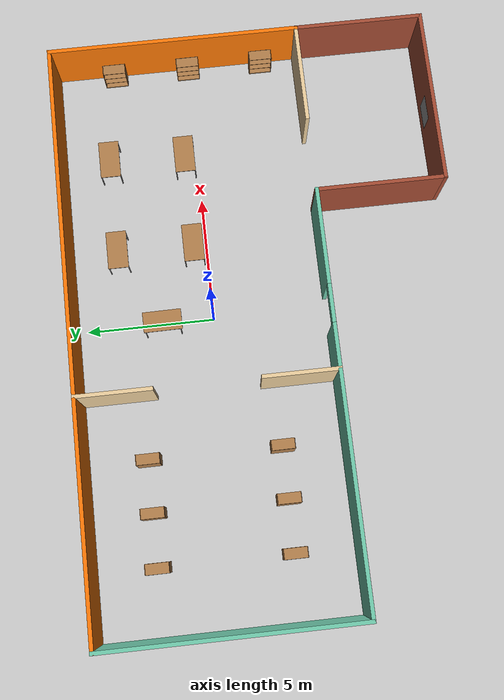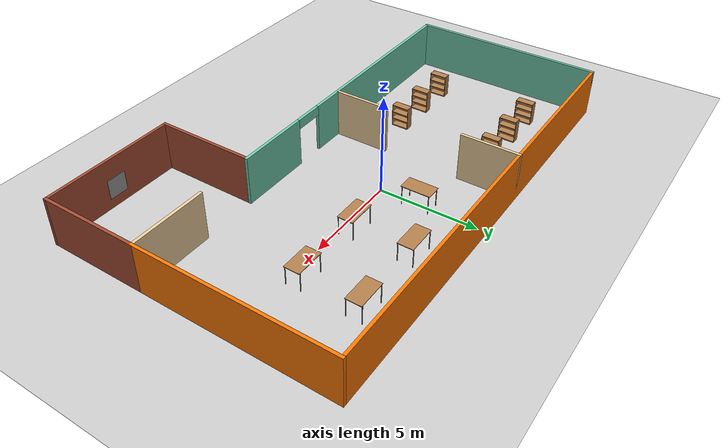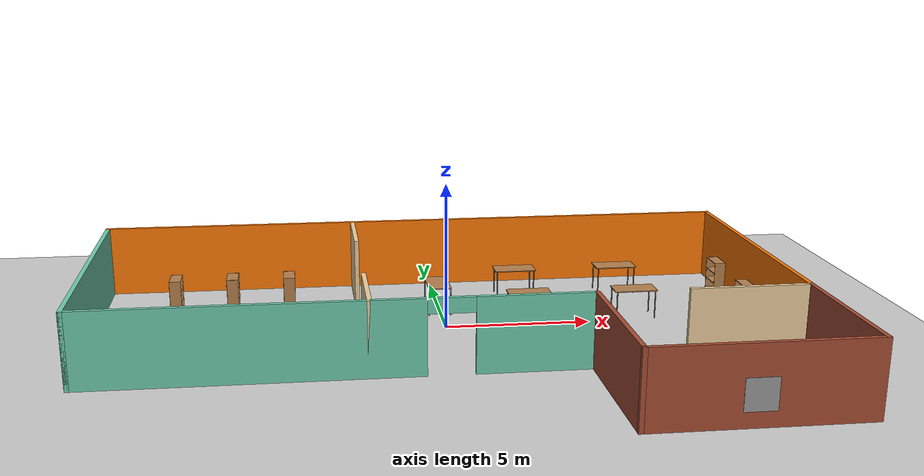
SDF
<sdf version="1.6">
 <world name="default">
  <light name="sun" type="directional">
   <pose>0 0 10 0 -0 0</pose>
   <diffuse>0.8 0.8 0.8 1</diffuse>
   <specular>0.2 0.2 0.2 1</specular>
   <attenuation>
    <range>1000</range>
    <constant>0.9</constant>
    <linear>0.01</linear>
    <quadratic>0.001</quadratic>
   </attenuation>
   <direction>-0.5 0.1 -0.9</direction>
  </light>
  <model name="ground_plane">
   <static>1</static>
   <link name="link">
    <collision name="collision">
     <geometry><plane><normal>0 0 1</normal><size>100 100</size></plane></geometry>
     <surface><friction><ode><mu>100</mu><mu2>50</mu2></ode></friction></surface>
    </collision>
    <visual name="visual">
     <cast_shadows>0</cast_shadows>
     <geometry><plane><normal>0 0 1</normal><size>100 100</size></plane></geometry>
     <material>
      <script><uri>file://media/materials/scripts/gazebo.material</uri><name>Gazebo/Grey</name></script>
     </material>
    </visual>
   </link>
  </model>
  <gravity>0 0 -9.8</gravity>
  <magnetic_field>6e-06 2.3e-05 -4.2e-05</magnetic_field>
  <atmosphere type="adiabatic"/>
  <physics name="default_physics" default="0" type="ode">
   <max_step_size>0.001</max_step_size>
   <real_time_factor>1</real_time_factor>
   <real_time_update_rate>1000</real_time_update_rate>
  </physics>
  <scene><ambient>0.4 0.4 0.4 1</ambient><background>0.7 0.7 0.7 1</background><shadows>1</shadows></scene>
  <spherical_coordinates>
   <surface_model>EARTH_WGS84</surface_model>
   <latitude_deg>0</latitude_deg>
   <longitude_deg>0</longitude_deg>
   <elevation>0</elevation>
   <heading_deg>0</heading_deg>
  </spherical_coordinates>
  <model name="model">
   <pose>-0.4599 -2.03302 0 0 -0 0</pose>
   <link name="Wall_0">
    <collision name="Wall_0_Collision">
     <geometry><box><size>10 0.15 2.5</size></box></geometry>
     <pose>0 0 1.25 0 -0 0</pose>
    </collision>
    <visual name="Wall_0_Visual">
     <pose>0 0 1.25 0 -0 0</pose>
     <geometry><box><size>10 0.15 2.5</size></box></geometry>
     <material>
      <script><uri>file://media/materials/scripts/gazebo.material</uri><name>Gazebo/Grey</name></script>
      <ambient>0.435294 0.796078 0.67451 1</ambient>
     </material>
     <meta><layer>0</layer></meta>
    </visual>
    <pose>-11.425 2.5 0 0 0 -1.5708</pose>
   </link>
   <link name="Wall_12">
    <pose>-3.425 -2.425 0 0 -0 0</pose>
    <visual name="Wall_12_Visual_0">
     <pose>-2.66312 0 1.25 0 -0 0</pose>
     <geometry><box><size>10.8238 0.15 2.5</size></box></geometry>
     <material>
      <script><uri>file://media/materials/scripts/gazebo.material</uri><name>Gazebo/Grey</name></script>
      <ambient>0.435294 0.796078 0.67451 1</ambient>
     </material>
     <meta><layer>0</layer></meta>
    </visual>
    <collision name="Wall_12_Collision_0">
     <geometry><box><size>10.8238 0.15 2.5</size></box></geometry>
     <pose>-2.66312 0 1.25 0 -0 0</pose>
    </collision>
    <visual name="Wall_12_Visual_1">
     <pose>6.16188 0 1.25 0 -0 0</pose>
     <geometry><box><size>3.82625 0.15 2.5</size></box></geometry>
     <material>
      <script><uri>file://media/materials/scripts/gazebo.material</uri><name>Gazebo/Grey</name></script>
      <ambient>0.435294 0.796078 0.67451 1</ambient>
     </material>
     <meta><layer>0</layer></meta>
    </visual>
    <collision name="Wall_12_Collision_1">
     <geometry><box><size>3.82625 0.15 2.5</size></box></geometry>
     <pose>6.16188 0 1.25 0 -0 0</pose>
    </collision>
    <visual name="Wall_12_Visual_2">
     <pose>3.49875 0 2.25 0 -0 0</pose>
     <geometry><box><size>1.5 0.15 0.5</size></box></geometry>
     <material>
      <script><uri>file://media/materials/scripts/gazebo.material</uri><name>Gazebo/Grey</name></script>
      <ambient>0.435294 0.796078 0.67451 1</ambient>
     </material>
     <meta><layer>0</layer></meta>
    </visual>
    <collision name="Wall_12_Collision_2">
     <geometry><box><size>1.5 0.15 0.5</size></box></geometry>
     <pose>3.49875 0 2.25 0 -0 0</pose>
    </collision>
   </link>
   <link name="Wall_18">
    <collision name="Wall_18_Collision">
     <geometry><box><size>5.15 0.15 2.5</size></box></geometry>
     <pose>0 0 1.25 0 -0 0</pose>
    </collision>
    <visual name="Wall_18_Visual">
     <pose>0 0 1.25 0 -0 0</pose>
     <geometry><box><size>5.15 0.15 2.5</size></box></geometry>
     <material>
      <script><uri>file://media/materials/scripts/gazebo.material</uri><name>Gazebo/Bricks</name></script>
      <ambient>1 1 1 1</ambient>
     </material>
     <meta><layer>0</layer></meta>
    </visual>
    <pose>4.575 -4.925 0 0 -0 1.5708</pose>
   </link>
   <link name="Wall_2">
    <collision name="Wall_2_Collision">
     <geometry><box><size>23 0.15 2.5</size></box></geometry>
     <pose>0 0 1.25 0 -0 0</pose>
    </collision>
    <visual name="Wall_2_Visual">
     <pose>0 0 1.25 0 -0 0</pose>
     <geometry><box><size>23 0.15 2.5</size></box></geometry>
     <material>
      <script><uri>file://media/materials/scripts/gazebo.material</uri><name>Gazebo/Grey</name></script>
      <ambient>0.996078 0.47451 0.0196078 1</ambient>
     </material>
     <meta><layer>0</layer></meta>
    </visual>
    <pose>0 7.425 0 0 -0 0</pose>
   </link>
   <link name="Wall_20">
    <collision name="Wall_20_Collision">
     <geometry><box><size>4 0.15 2.5</size></box></geometry>
     <pose>0 0 1.25 0 -0 0</pose>
    </collision>
    <visual name="Wall_20_Visual">
     <pose>0 0 1.25 0 -0 0</pose>
     <geometry><box><size>4 0.15 2.5</size></box></geometry>
     <material>
      <script><uri>file://media/materials/scripts/gazebo.material</uri><name>Gazebo/Grey</name></script>
      <ambient>0.921569 0.807843 0.615686 1</ambient>
     </material>
     <meta><layer>0</layer></meta>
    </visual>
    <pose>9.5 -2.425 0 0 -0 3.14159</pose>
   </link>
   <link name="Wall_22">
    <collision name="Wall_22_Collision">
     <geometry><box><size>3 0.15 2.5</size></box></geometry>
     <pose>0 0 1.25 0 -0 0</pose>
    </collision>
    <visual name="Wall_22_Visual">
     <pose>0 0 1.25 0 -0 0</pose>
     <geometry><box><size>3 0.15 2.5</size></box></geometry>
     <material>
      <script><uri>file://media/materials/scripts/gazebo.material</uri><name>Gazebo/Grey</name></script>
      <ambient>0.921569 0.807843 0.615686 1</ambient>
     </material>
     <meta><layer>0</layer></meta>
    </visual>
    <pose>-2.425 6 0 0 0 -1.5708</pose>
   </link>
   <link name="Wall_24">
    <collision name="Wall_24_Collision">
     <geometry><box><size>3 0.15 2.5</size></box></geometry>
     <pose>0 0 1.25 0 -0 0</pose>
    </collision>
    <visual name="Wall_24_Visual">
     <pose>0 0 1.25 0 -0 0</pose>
     <geometry><box><size>3 0.15 2.5</size></box></geometry>
     <material>
      <script><uri>file://media/materials/scripts/gazebo.material</uri><name>Gazebo/Grey</name></script>
      <ambient>0.921569 0.807843 0.615686 1</ambient>
     </material>
     <meta><layer>0</layer></meta>
    </visual>
    <pose>-2.425 -1 0 0 -0 1.5708</pose>
   </link>
   <link name="Wall_26">
    <collision name="Wall_26_Collision">
     <geometry><box><size>5.15 0.15 2.5</size></box></geometry>
     <pose>0 0 1.25 0 -0 0</pose>
    </collision>
    <visual name="Wall_26_Visual">
     <pose>0 0 1.25 0 -0 0</pose>
     <geometry><box><size>5.15 0.15 2.5</size></box></geometry>
     <material>
      <script><uri>file://media/materials/scripts/gazebo.material</uri><name>Gazebo/Bricks</name></script>
      <ambient>1 1 1 1</ambient>
     </material>
     <meta><layer>0</layer></meta>
    </visual>
    <pose>11.425 -4.925 0 0 0 -1.5708</pose>
   </link>
   <link name="Wall_28">
    <collision name="Wall_28_Collision">
     <geometry><box><size>7 0.15 2.5</size></box></geometry>
     <pose>0 0 1.25 0 -0 0</pose>
    </collision>
    <visual name="Wall_28_Visual">
     <pose>0 0 1.25 0 -0 0</pose>
     <geometry><box><size>7 0.15 2.5</size></box></geometry>
     <material>
      <script><uri>file://media/materials/scripts/gazebo.material</uri><name>Gazebo/Bricks</name></script>
      <ambient>1 1 1 1</ambient>
     </material>
     <meta><layer>0</layer></meta>
    </visual>
    <pose>8 -7.425 0 0 -0 3.14159</pose>
   </link>
   <link name="Wall_4">
    <collision name="Wall_4_Collision">
     <geometry><box><size>10 0.15 2.5</size></box></geometry>
     <pose>0 0 1.25 0 -0 0</pose>
    </collision>
    <visual name="Wall_4_Visual">
     <pose>0 0 1.25 0 -0 0</pose>
     <geometry><box><size>10 0.15 2.5</size></box></geometry>
     <material>
      <script><uri>file://media/materials/scripts/gazebo.material</uri><name>Gazebo/Grey</name></script>
      <ambient>0.996078 0.47451 0.0196078 1</ambient>
     </material>
     <meta><layer>0</layer></meta>
    </visual>
    <pose>11.425 2.5 0 0 0 -1.5708</pose>
   </link>
   <link name="Window_0">
    <collision name="Window_0_Collision">
     <geometry><box><size>1 0.17 1</size></box></geometry>
     <pose>0 0 0.5 0 -0 0</pose>
    </collision>
    <visual name="Window_0_Visual">
     <pose>0 0 0.5 0 -0 0</pose>
     <geometry><box><size>1 0.17 1</size></box></geometry>
     <material>
      <script><uri>file://media/materials/scripts/gazebo.material</uri><name>Gazebo/Grey</name></script>
     </material>
    </visual>
    <pose>7.915 -7.426 0.5 0 -0 0</pose>
   </link>
   <static>1</static>
  </model>
  <model name="bookshelf">
   <static>1</static>
   <link name="link">
    <inertial><mass>1</mass></inertial>
    <collision name="back">
     <pose>0 0.005 0.6 0 -0 0</pose>
     <geometry><box><size>0.9 0.01 1.2</size></box></geometry>
    </collision>
    <visual name="visual1">
     <pose>0 0.005 0.6 0 -0 0</pose>
     <geometry><box><size>0.9 0.01 1.2</size></box></geometry>
     <material>
      <script><uri>file://media/materials/scripts/gazebo.material</uri><name>Gazebo/Wood</name></script>
     </material>
    </visual>
    <collision name="left_side">
     <pose>0.45 -0.195 0.6 0 -0 0</pose>
     <geometry><box><size>0.02 0.4 1.2</size></box></geometry>
    </collision>
    <visual name="visual2">
     <pose>0.45 -0.195 0.6 0 -0 0</pose>
     <geometry><box><size>0.02 0.4 1.2</size></box></geometry>
     <material>
      <script><uri>file://media/materials/scripts/gazebo.material</uri><name>Gazebo/Wood</name></script>
     </material>
    </visual>
    <collision name="right_side">
     <pose>-0.45 -0.195 0.6 0 -0 0</pose>
     <geometry><box><size>0.02 0.4 1.2</size></box></geometry>
    </collision>
    <visual name="visual3">
     <pose>-0.45 -0.195 0.6 0 -0 0</pose>
     <geometry><box><size>0.02 0.4 1.2</size></box></geometry>
     <material>
      <script><uri>file://media/materials/scripts/gazebo.material</uri><name>Gazebo/Wood</name></script>
     </material>
    </visual>
    <collision name="bottom">
     <pose>0 -0.195 0.03 0 -0 0</pose>
     <geometry><box><size>0.88 0.4 0.06</size></box></geometry>
    </collision>
    <visual name="visual4">
     <pose>0 -0.195 0.03 0 -0 0</pose>
     <geometry><box><size>0.88 0.4 0.06</size></box></geometry>
     <material>
      <script><uri>file://media/materials/scripts/gazebo.material</uri><name>Gazebo/Wood</name></script>
     </material>
    </visual>
    <collision name="top">
     <pose>0 -0.195 1.19 0 -0 0</pose>
     <geometry><box><size>0.88 0.4 0.02</size></box></geometry>
    </collision>
    <visual name="visual5">
     <pose>0 -0.195 1.19 0 -0 0</pose>
     <geometry><box><size>0.88 0.4 0.02</size></box></geometry>
     <material>
      <script><uri>file://media/materials/scripts/gazebo.material</uri><name>Gazebo/Wood</name></script>
     </material>
    </visual>
    <collision name="low_shelf">
     <pose>0 -0.195 0.43 0 -0 0</pose>
     <geometry><box><size>0.88 0.4 0.02</size></box></geometry>
    </collision>
    <visual name="visual6">
     <pose>0 -0.195 0.43 0 -0 0</pose>
     <geometry><box><size>0.88 0.4 0.02</size></box></geometry>
     <material>
      <script><uri>file://media/materials/scripts/gazebo.material</uri><name>Gazebo/Wood</name></script>
     </material>
    </visual>
    <collision name="high_shelf">
     <pose>0 -0.195 0.8 0 -0 0</pose>
     <geometry><box><size>0.88 0.4 0.02</size></box></geometry>
    </collision>
    <visual name="visual7">
     <pose>0 -0.195 0.8 0 -0 0</pose>
     <geometry><box><size>0.88 0.4 0.02</size></box></geometry>
     <material>
      <script><uri>file://media/materials/scripts/gazebo.material</uri><name>Gazebo/Wood</name></script>
     </material>
    </visual>
   </link>
   <pose>-5.5 3 0 0 -0 1.5708</pose>
  </model>
  <model name="bookshelf_clone">
   <static>1</static>
   <link name="link">
    <inertial><mass>1</mass></inertial>
    <collision name="back">
     <pose>0 0.005 0.6 0 -0 0</pose>
     <geometry><box><size>0.9 0.01 1.2</size></box></geometry>
    </collision>
    <visual name="visual1">
     <pose>0 0.005 0.6 0 -0 0</pose>
     <geometry><box><size>0.9 0.01 1.2</size></box></geometry>
     <material>
      <script><uri>file://media/materials/scripts/gazebo.material</uri><name>Gazebo/Wood</name></script>
     </material>
    </visual>
    <collision name="left_side">
     <pose>0.45 -0.195 0.6 0 -0 0</pose>
     <geometry><box><size>0.02 0.4 1.2</size></box></geometry>
    </collision>
    <visual name="visual2">
     <pose>0.45 -0.195 0.6 0 -0 0</pose>
     <geometry><box><size>0.02 0.4 1.2</size></box></geometry>
     <material>
      <script><uri>file://media/materials/scripts/gazebo.material</uri><name>Gazebo/Wood</name></script>
     </material>
    </visual>
    <collision name="right_side">
     <pose>-0.45 -0.195 0.6 0 -0 0</pose>
     <geometry><box><size>0.02 0.4 1.2</size></box></geometry>
    </collision>
    <visual name="visual3">
     <pose>-0.45 -0.195 0.6 0 -0 0</pose>
     <geometry><box><size>0.02 0.4 1.2</size></box></geometry>
     <material>
      <script><uri>file://media/materials/scripts/gazebo.material</uri><name>Gazebo/Wood</name></script>
     </material>
    </visual>
    <collision name="bottom">
     <pose>0 -0.195 0.03 0 -0 0</pose>
     <geometry><box><size>0.88 0.4 0.06</size></box></geometry>
    </collision>
    <visual name="visual4">
     <pose>0 -0.195 0.03 0 -0 0</pose>
     <geometry><box><size>0.88 0.4 0.06</size></box></geometry>
     <material>
      <script><uri>file://media/materials/scripts/gazebo.material</uri><name>Gazebo/Wood</name></script>
     </material>
    </visual>
    <collision name="top">
     <pose>0 -0.195 1.19 0 -0 0</pose>
     <geometry><box><size>0.88 0.4 0.02</size></box></geometry>
    </collision>
    <visual name="visual5">
     <pose>0 -0.195 1.19 0 -0 0</pose>
     <geometry><box><size>0.88 0.4 0.02</size></box></geometry>
     <material>
      <script><uri>file://media/materials/scripts/gazebo.material</uri><name>Gazebo/Wood</name></script>
     </material>
    </visual>
    <collision name="low_shelf">
     <pose>0 -0.195 0.43 0 -0 0</pose>
     <geometry><box><size>0.88 0.4 0.02</size></box></geometry>
    </collision>
    <visual name="visual6">
     <pose>0 -0.195 0.43 0 -0 0</pose>
     <geometry><box><size>0.88 0.4 0.02</size></box></geometry>
     <material>
      <script><uri>file://media/materials/scripts/gazebo.material</uri><name>Gazebo/Wood</name></script>
     </material>
    </visual>
    <collision name="high_shelf">
     <pose>0 -0.195 0.8 0 -0 0</pose>
     <geometry><box><size>0.88 0.4 0.02</size></box></geometry>
    </collision>
    <visual name="visual7">
     <pose>0 -0.195 0.8 0 -0 0</pose>
     <geometry><box><size>0.88 0.4 0.02</size></box></geometry>
     <material>
      <script><uri>file://media/materials/scripts/gazebo.material</uri><name>Gazebo/Wood</name></script>
     </material>
    </visual>
   </link>
   <pose>-7.5 3 0 0 -0 1.5708</pose>
  </model>
  <model name="bookshelf_clone_0">
   <static>1</static>
   <link name="link">
    <inertial><mass>1</mass></inertial>
    <collision name="back">
     <pose>0 0.005 0.6 0 -0 0</pose>
     <geometry><box><size>0.9 0.01 1.2</size></box></geometry>
    </collision>
    <visual name="visual1">
     <pose>0 0.005 0.6 0 -0 0</pose>
     <geometry><box><size>0.9 0.01 1.2</size></box></geometry>
     <material>
      <script><uri>file://media/materials/scripts/gazebo.material</uri><name>Gazebo/Wood</name></script>
     </material>
    </visual>
    <collision name="left_side">
     <pose>0.45 -0.195 0.6 0 -0 0</pose>
     <geometry><box><size>0.02 0.4 1.2</size></box></geometry>
    </collision>
    <visual name="visual2">
     <pose>0.45 -0.195 0.6 0 -0 0</pose>
     <geometry><box><size>0.02 0.4 1.2</size></box></geometry>
     <material>
      <script><uri>file://media/materials/scripts/gazebo.material</uri><name>Gazebo/Wood</name></script>
     </material>
    </visual>
    <collision name="right_side">
     <pose>-0.45 -0.195 0.6 0 -0 0</pose>
     <geometry><box><size>0.02 0.4 1.2</size></box></geometry>
    </collision>
    <visual name="visual3">
     <pose>-0.45 -0.195 0.6 0 -0 0</pose>
     <geometry><box><size>0.02 0.4 1.2</size></box></geometry>
     <material>
      <script><uri>file://media/materials/scripts/gazebo.material</uri><name>Gazebo/Wood</name></script>
     </material>
    </visual>
    <collision name="bottom">
     <pose>0 -0.195 0.03 0 -0 0</pose>
     <geometry><box><size>0.88 0.4 0.06</size></box></geometry>
    </collision>
    <visual name="visual4">
     <pose>0 -0.195 0.03 0 -0 0</pose>
     <geometry><box><size>0.88 0.4 0.06</size></box></geometry>
     <material>
      <script><uri>file://media/materials/scripts/gazebo.material</uri><name>Gazebo/Wood</name></script>
     </material>
    </visual>
    <collision name="top">
     <pose>0 -0.195 1.19 0 -0 0</pose>
     <geometry><box><size>0.88 0.4 0.02</size></box></geometry>
    </collision>
    <visual name="visual5">
     <pose>0 -0.195 1.19 0 -0 0</pose>
     <geometry><box><size>0.88 0.4 0.02</size></box></geometry>
     <material>
      <script><uri>file://media/materials/scripts/gazebo.material</uri><name>Gazebo/Wood</name></script>
     </material>
    </visual>
    <collision name="low_shelf">
     <pose>0 -0.195 0.43 0 -0 0</pose>
     <geometry><box><size>0.88 0.4 0.02</size></box></geometry>
    </collision>
    <visual name="visual6">
     <pose>0 -0.195 0.43 0 -0 0</pose>
     <geometry><box><size>0.88 0.4 0.02</size></box></geometry>
     <material>
      <script><uri>file://media/materials/scripts/gazebo.material</uri><name>Gazebo/Wood</name></script>
     </material>
    </visual>
    <collision name="high_shelf">
     <pose>0 -0.195 0.8 0 -0 0</pose>
     <geometry><box><size>0.88 0.4 0.02</size></box></geometry>
    </collision>
    <visual name="visual7">
     <pose>0 -0.195 0.8 0 -0 0</pose>
     <geometry><box><size>0.88 0.4 0.02</size></box></geometry>
     <material>
      <script><uri>file://media/materials/scripts/gazebo.material</uri><name>Gazebo/Wood</name></script>
     </material>
    </visual>
   </link>
   <pose>-9.5 3 0 0 -0 1.5708</pose>
  </model>
  <model name="bookshelf_clone_1">
   <static>1</static>
   <link name="link">
    <inertial><mass>1</mass></inertial>
    <collision name="back">
     <pose>0 0.005 0.6 0 -0 0</pose>
     <geometry><box><size>0.9 0.01 1.2</size></box></geometry>
    </collision>
    <visual name="visual1">
     <pose>0 0.005 0.6 0 -0 0</pose>
     <geometry><box><size>0.9 0.01 1.2</size></box></geometry>
     <material>
      <script><uri>file://media/materials/scripts/gazebo.material</uri><name>Gazebo/Wood</name></script>
     </material>
    </visual>
    <collision name="left_side">
     <pose>0.45 -0.195 0.6 0 -0 0</pose>
     <geometry><box><size>0.02 0.4 1.2</size></box></geometry>
    </collision>
    <visual name="visual2">
     <pose>0.45 -0.195 0.6 0 -0 0</pose>
     <geometry><box><size>0.02 0.4 1.2</size></box></geometry>
     <material>
      <script><uri>file://media/materials/scripts/gazebo.material</uri><name>Gazebo/Wood</name></script>
     </material>
    </visual>
    <collision name="right_side">
     <pose>-0.45 -0.195 0.6 0 -0 0</pose>
     <geometry><box><size>0.02 0.4 1.2</size></box></geometry>
    </collision>
    <visual name="visual3">
     <pose>-0.45 -0.195 0.6 0 -0 0</pose>
     <geometry><box><size>0.02 0.4 1.2</size></box></geometry>
     <material>
      <script><uri>file://media/materials/scripts/gazebo.material</uri><name>Gazebo/Wood</name></script>
     </material>
    </visual>
    <collision name="bottom">
     <pose>0 -0.195 0.03 0 -0 0</pose>
     <geometry><box><size>0.88 0.4 0.06</size></box></geometry>
    </collision>
    <visual name="visual4">
     <pose>0 -0.195 0.03 0 -0 0</pose>
     <geometry><box><size>0.88 0.4 0.06</size></box></geometry>
     <material>
      <script><uri>file://media/materials/scripts/gazebo.material</uri><name>Gazebo/Wood</name></script>
     </material>
    </visual>
    <collision name="top">
     <pose>0 -0.195 1.19 0 -0 0</pose>
     <geometry><box><size>0.88 0.4 0.02</size></box></geometry>
    </collision>
    <visual name="visual5">
     <pose>0 -0.195 1.19 0 -0 0</pose>
     <geometry><box><size>0.88 0.4 0.02</size></box></geometry>
     <material>
      <script><uri>file://media/materials/scripts/gazebo.material</uri><name>Gazebo/Wood</name></script>
     </material>
    </visual>
    <collision name="low_shelf">
     <pose>0 -0.195 0.43 0 -0 0</pose>
     <geometry><box><size>0.88 0.4 0.02</size></box></geometry>
    </collision>
    <visual name="visual6">
     <pose>0 -0.195 0.43 0 -0 0</pose>
     <geometry><box><size>0.88 0.4 0.02</size></box></geometry>
     <material>
      <script><uri>file://media/materials/scripts/gazebo.material</uri><name>Gazebo/Wood</name></script>
     </material>
    </visual>
    <collision name="high_shelf">
     <pose>0 -0.195 0.8 0 -0 0</pose>
     <geometry><box><size>0.88 0.4 0.02</size></box></geometry>
    </collision>
    <visual name="visual7">
     <pose>0 -0.195 0.8 0 -0 0</pose>
     <geometry><box><size>0.88 0.4 0.02</size></box></geometry>
     <material>
      <script><uri>file://media/materials/scripts/gazebo.material</uri><name>Gazebo/Wood</name></script>
     </material>
    </visual>
   </link>
   <pose>-5.5 -2.1 0 0 -0 1.5708</pose>
  </model>
  <model name="bookshelf_clone_2">
   <static>1</static>
   <link name="link">
    <inertial><mass>1</mass></inertial>
    <collision name="back">
     <pose>0 0.005 0.6 0 -0 0</pose>
     <geometry><box><size>0.9 0.01 1.2</size></box></geometry>
    </collision>
    <visual name="visual1">
     <pose>0 0.005 0.6 0 -0 0</pose>
     <geometry><box><size>0.9 0.01 1.2</size></box></geometry>
     <material>
      <script><uri>file://media/materials/scripts/gazebo.material</uri><name>Gazebo/Wood</name></script>
     </material>
    </visual>
    <collision name="left_side">
     <pose>0.45 -0.195 0.6 0 -0 0</pose>
     <geometry><box><size>0.02 0.4 1.2</size></box></geometry>
    </collision>
    <visual name="visual2">
     <pose>0.45 -0.195 0.6 0 -0 0</pose>
     <geometry><box><size>0.02 0.4 1.2</size></box></geometry>
     <material>
      <script><uri>file://media/materials/scripts/gazebo.material</uri><name>Gazebo/Wood</name></script>
     </material>
    </visual>
    <collision name="right_side">
     <pose>-0.45 -0.195 0.6 0 -0 0</pose>
     <geometry><box><size>0.02 0.4 1.2</size></box></geometry>
    </collision>
    <visual name="visual3">
     <pose>-0.45 -0.195 0.6 0 -0 0</pose>
     <geometry><box><size>0.02 0.4 1.2</size></box></geometry>
     <material>
      <script><uri>file://media/materials/scripts/gazebo.material</uri><name>Gazebo/Wood</name></script>
     </material>
    </visual>
    <collision name="bottom">
     <pose>0 -0.195 0.03 0 -0 0</pose>
     <geometry><box><size>0.88 0.4 0.06</size></box></geometry>
    </collision>
    <visual name="visual4">
     <pose>0 -0.195 0.03 0 -0 0</pose>
     <geometry><box><size>0.88 0.4 0.06</size></box></geometry>
     <material>
      <script><uri>file://media/materials/scripts/gazebo.material</uri><name>Gazebo/Wood</name></script>
     </material>
    </visual>
    <collision name="top">
     <pose>0 -0.195 1.19 0 -0 0</pose>
     <geometry><box><size>0.88 0.4 0.02</size></box></geometry>
    </collision>
    <visual name="visual5">
     <pose>0 -0.195 1.19 0 -0 0</pose>
     <geometry><box><size>0.88 0.4 0.02</size></box></geometry>
     <material>
      <script><uri>file://media/materials/scripts/gazebo.material</uri><name>Gazebo/Wood</name></script>
     </material>
    </visual>
    <collision name="low_shelf">
     <pose>0 -0.195 0.43 0 -0 0</pose>
     <geometry><box><size>0.88 0.4 0.02</size></box></geometry>
    </collision>
    <visual name="visual6">
     <pose>0 -0.195 0.43 0 -0 0</pose>
     <geometry><box><size>0.88 0.4 0.02</size></box></geometry>
     <material>
      <script><uri>file://media/materials/scripts/gazebo.material</uri><name>Gazebo/Wood</name></script>
     </material>
    </visual>
    <collision name="high_shelf">
     <pose>0 -0.195 0.8 0 -0 0</pose>
     <geometry><box><size>0.88 0.4 0.02</size></box></geometry>
    </collision>
    <visual name="visual7">
     <pose>0 -0.195 0.8 0 -0 0</pose>
     <geometry><box><size>0.88 0.4 0.02</size></box></geometry>
     <material>
      <script><uri>file://media/materials/scripts/gazebo.material</uri><name>Gazebo/Wood</name></script>
     </material>
    </visual>
   </link>
   <pose>-7.5 -2.1 0 0 -0 1.5708</pose>
  </model>
  <model name="bookshelf_clone_3">
   <static>1</static>
   <link name="link">
    <inertial><mass>1</mass></inertial>
    <collision name="back">
     <pose>0 0.005 0.6 0 -0 0</pose>
     <geometry><box><size>0.9 0.01 1.2</size></box></geometry>
    </collision>
    <visual name="visual1">
     <pose>0 0.005 0.6 0 -0 0</pose>
     <geometry><box><size>0.9 0.01 1.2</size></box></geometry>
     <material>
      <script><uri>file://media/materials/scripts/gazebo.material</uri><name>Gazebo/Wood</name></script>
     </material>
    </visual>
    <collision name="left_side">
     <pose>0.45 -0.195 0.6 0 -0 0</pose>
     <geometry><box><size>0.02 0.4 1.2</size></box></geometry>
    </collision>
    <visual name="visual2">
     <pose>0.45 -0.195 0.6 0 -0 0</pose>
     <geometry><box><size>0.02 0.4 1.2</size></box></geometry>
     <material>
      <script><uri>file://media/materials/scripts/gazebo.material</uri><name>Gazebo/Wood</name></script>
     </material>
    </visual>
    <collision name="right_side">
     <pose>-0.45 -0.195 0.6 0 -0 0</pose>
     <geometry><box><size>0.02 0.4 1.2</size></box></geometry>
    </collision>
    <visual name="visual3">
     <pose>-0.45 -0.195 0.6 0 -0 0</pose>
     <geometry><box><size>0.02 0.4 1.2</size></box></geometry>
     <material>
      <script><uri>file://media/materials/scripts/gazebo.material</uri><name>Gazebo/Wood</name></script>
     </material>
    </visual>
    <collision name="bottom">
     <pose>0 -0.195 0.03 0 -0 0</pose>
     <geometry><box><size>0.88 0.4 0.06</size></box></geometry>
    </collision>
    <visual name="visual4">
     <pose>0 -0.195 0.03 0 -0 0</pose>
     <geometry><box><size>0.88 0.4 0.06</size></box></geometry>
     <material>
      <script><uri>file://media/materials/scripts/gazebo.material</uri><name>Gazebo/Wood</name></script>
     </material>
    </visual>
    <collision name="top">
     <pose>0 -0.195 1.19 0 -0 0</pose>
     <geometry><box><size>0.88 0.4 0.02</size></box></geometry>
    </collision>
    <visual name="visual5">
     <pose>0 -0.195 1.19 0 -0 0</pose>
     <geometry><box><size>0.88 0.4 0.02</size></box></geometry>
     <material>
      <script><uri>file://media/materials/scripts/gazebo.material</uri><name>Gazebo/Wood</name></script>
     </material>
    </visual>
    <collision name="low_shelf">
     <pose>0 -0.195 0.43 0 -0 0</pose>
     <geometry><box><size>0.88 0.4 0.02</size></box></geometry>
    </collision>
    <visual name="visual6">
     <pose>0 -0.195 0.43 0 -0 0</pose>
     <geometry><box><size>0.88 0.4 0.02</size></box></geometry>
     <material>
      <script><uri>file://media/materials/scripts/gazebo.material</uri><name>Gazebo/Wood</name></script>
     </material>
    </visual>
    <collision name="high_shelf">
     <pose>0 -0.195 0.8 0 -0 0</pose>
     <geometry><box><size>0.88 0.4 0.02</size></box></geometry>
    </collision>
    <visual name="visual7">
     <pose>0 -0.195 0.8 0 -0 0</pose>
     <geometry><box><size>0.88 0.4 0.02</size></box></geometry>
     <material>
      <script><uri>file://media/materials/scripts/gazebo.material</uri><name>Gazebo/Wood</name></script>
     </material>
    </visual>
   </link>
   <pose>-9.5 -2.1 0 0 -0 1.5708</pose>
  </model>
  <model name="bookshelf_clone_4">
   <static>1</static>
   <link name="link">
    <inertial><mass>1</mass></inertial>
    <collision name="back">
     <pose>0 0.005 0.6 0 -0 0</pose>
     <geometry><box><size>0.9 0.01 1.2</size></box></geometry>
    </collision>
    <visual name="visual1">
     <pose>0 0.005 0.6 0 -0 0</pose>
     <geometry><box><size>0.9 0.01 1.2</size></box></geometry>
     <material>
      <script><uri>file://media/materials/scripts/gazebo.material</uri><name>Gazebo/Wood</name></script>
     </material>
    </visual>
    <collision name="left_side">
     <pose>0.45 -0.195 0.6 0 -0 0</pose>
     <geometry><box><size>0.02 0.4 1.2</size></box></geometry>
    </collision>
    <visual name="visual2">
     <pose>0.45 -0.195 0.6 0 -0 0</pose>
     <geometry><box><size>0.02 0.4 1.2</size></box></geometry>
     <material>
      <script><uri>file://media/materials/scripts/gazebo.material</uri><name>Gazebo/Wood</name></script>
     </material>
    </visual>
    <collision name="right_side">
     <pose>-0.45 -0.195 0.6 0 -0 0</pose>
     <geometry><box><size>0.02 0.4 1.2</size></box></geometry>
    </collision>
    <visual name="visual3">
     <pose>-0.45 -0.195 0.6 0 -0 0</pose>
     <geometry><box><size>0.02 0.4 1.2</size></box></geometry>
     <material>
      <script><uri>file://media/materials/scripts/gazebo.material</uri><name>Gazebo/Wood</name></script>
     </material>
    </visual>
    <collision name="bottom">
     <pose>0 -0.195 0.03 0 -0 0</pose>
     <geometry><box><size>0.88 0.4 0.06</size></box></geometry>
    </collision>
    <visual name="visual4">
     <pose>0 -0.195 0.03 0 -0 0</pose>
     <geometry><box><size>0.88 0.4 0.06</size></box></geometry>
     <material>
      <script><uri>file://media/materials/scripts/gazebo.material</uri><name>Gazebo/Wood</name></script>
     </material>
    </visual>
    <collision name="top">
     <pose>0 -0.195 1.19 0 -0 0</pose>
     <geometry><box><size>0.88 0.4 0.02</size></box></geometry>
    </collision>
    <visual name="visual5">
     <pose>0 -0.195 1.19 0 -0 0</pose>
     <geometry><box><size>0.88 0.4 0.02</size></box></geometry>
     <material>
      <script><uri>file://media/materials/scripts/gazebo.material</uri><name>Gazebo/Wood</name></script>
     </material>
    </visual>
    <collision name="low_shelf">
     <pose>0 -0.195 0.43 0 -0 0</pose>
     <geometry><box><size>0.88 0.4 0.02</size></box></geometry>
    </collision>
    <visual name="visual6">
     <pose>0 -0.195 0.43 0 -0 0</pose>
     <geometry><box><size>0.88 0.4 0.02</size></box></geometry>
     <material>
      <script><uri>file://media/materials/scripts/gazebo.material</uri><name>Gazebo/Wood</name></script>
     </material>
    </visual>
    <collision name="high_shelf">
     <pose>0 -0.195 0.8 0 -0 0</pose>
     <geometry><box><size>0.88 0.4 0.02</size></box></geometry>
    </collision>
    <visual name="visual7">
     <pose>0 -0.195 0.8 0 -0 0</pose>
     <geometry><box><size>0.88 0.4 0.02</size></box></geometry>
     <material>
      <script><uri>file://media/materials/scripts/gazebo.material</uri><name>Gazebo/Wood</name></script>
     </material>
    </visual>
   </link>
   <pose>10.8 3 0 0 0 -1.5708</pose>
  </model>
  <model name="bookshelf_clone_4_clone">
   <static>1</static>
   <link name="link">
    <inertial><mass>1</mass></inertial>
    <collision name="back">
     <pose>0 0.005 0.6 0 -0 0</pose>
     <geometry><box><size>0.9 0.01 1.2</size></box></geometry>
    </collision>
    <visual name="visual1">
     <pose>0 0.005 0.6 0 -0 0</pose>
     <geometry><box><size>0.9 0.01 1.2</size></box></geometry>
     <material>
      <script><uri>file://media/materials/scripts/gazebo.material</uri><name>Gazebo/Wood</name></script>
     </material>
    </visual>
    <collision name="left_side">
     <pose>0.45 -0.195 0.6 0 -0 0</pose>
     <geometry><box><size>0.02 0.4 1.2</size></box></geometry>
    </collision>
    <visual name="visual2">
     <pose>0.45 -0.195 0.6 0 -0 0</pose>
     <geometry><box><size>0.02 0.4 1.2</size></box></geometry>
     <material>
      <script><uri>file://media/materials/scripts/gazebo.material</uri><name>Gazebo/Wood</name></script>
     </material>
    </visual>
    <collision name="right_side">
     <pose>-0.45 -0.195 0.6 0 -0 0</pose>
     <geometry><box><size>0.02 0.4 1.2</size></box></geometry>
    </collision>
    <visual name="visual3">
     <pose>-0.45 -0.195 0.6 0 -0 0</pose>
     <geometry><box><size>0.02 0.4 1.2</size></box></geometry>
     <material>
      <script><uri>file://media/materials/scripts/gazebo.material</uri><name>Gazebo/Wood</name></script>
     </material>
    </visual>
    <collision name="bottom">
     <pose>0 -0.195 0.03 0 -0 0</pose>
     <geometry><box><size>0.88 0.4 0.06</size></box></geometry>
    </collision>
    <visual name="visual4">
     <pose>0 -0.195 0.03 0 -0 0</pose>
     <geometry><box><size>0.88 0.4 0.06</size></box></geometry>
     <material>
      <script><uri>file://media/materials/scripts/gazebo.material</uri><name>Gazebo/Wood</name></script>
     </material>
    </visual>
    <collision name="top">
     <pose>0 -0.195 1.19 0 -0 0</pose>
     <geometry><box><size>0.88 0.4 0.02</size></box></geometry>
    </collision>
    <visual name="visual5">
     <pose>0 -0.195 1.19 0 -0 0</pose>
     <geometry><box><size>0.88 0.4 0.02</size></box></geometry>
     <material>
      <script><uri>file://media/materials/scripts/gazebo.material</uri><name>Gazebo/Wood</name></script>
     </material>
    </visual>
    <collision name="low_shelf">
     <pose>0 -0.195 0.43 0 -0 0</pose>
     <geometry><box><size>0.88 0.4 0.02</size></box></geometry>
    </collision>
    <visual name="visual6">
     <pose>0 -0.195 0.43 0 -0 0</pose>
     <geometry><box><size>0.88 0.4 0.02</size></box></geometry>
     <material>
      <script><uri>file://media/materials/scripts/gazebo.material</uri><name>Gazebo/Wood</name></script>
     </material>
    </visual>
    <collision name="high_shelf">
     <pose>0 -0.195 0.8 0 -0 0</pose>
     <geometry><box><size>0.88 0.4 0.02</size></box></geometry>
    </collision>
    <visual name="visual7">
     <pose>0 -0.195 0.8 0 -0 0</pose>
     <geometry><box><size>0.88 0.4 0.02</size></box></geometry>
     <material>
      <script><uri>file://media/materials/scripts/gazebo.material</uri><name>Gazebo/Wood</name></script>
     </material>
    </visual>
   </link>
   <pose>10.8 0 0 0 0 -1.5708</pose>
  </model>
  <model name="bookshelf_clone_4_clone_0">
   <static>1</static>
   <link name="link">
    <inertial><mass>1</mass></inertial>
    <collision name="back">
     <pose>0 0.005 0.6 0 -0 0</pose>
     <geometry><box><size>0.9 0.01 1.2</size></box></geometry>
    </collision>
    <visual name="visual1">
     <pose>0 0.005 0.6 0 -0 0</pose>
     <geometry><box><size>0.9 0.01 1.2</size></box></geometry>
     <material>
      <script><uri>file://media/materials/scripts/gazebo.material</uri><name>Gazebo/Wood</name></script>
     </material>
    </visual>
    <collision name="left_side">
     <pose>0.45 -0.195 0.6 0 -0 0</pose>
     <geometry><box><size>0.02 0.4 1.2</size></box></geometry>
    </collision>
    <visual name="visual2">
     <pose>0.45 -0.195 0.6 0 -0 0</pose>
     <geometry><box><size>0.02 0.4 1.2</size></box></geometry>
     <material>
      <script><uri>file://media/materials/scripts/gazebo.material</uri><name>Gazebo/Wood</name></script>
     </material>
    </visual>
    <collision name="right_side">
     <pose>-0.45 -0.195 0.6 0 -0 0</pose>
     <geometry><box><size>0.02 0.4 1.2</size></box></geometry>
    </collision>
    <visual name="visual3">
     <pose>-0.45 -0.195 0.6 0 -0 0</pose>
     <geometry><box><size>0.02 0.4 1.2</size></box></geometry>
     <material>
      <script><uri>file://media/materials/scripts/gazebo.material</uri><name>Gazebo/Wood</name></script>
     </material>
    </visual>
    <collision name="bottom">
     <pose>0 -0.195 0.03 0 -0 0</pose>
     <geometry><box><size>0.88 0.4 0.06</size></box></geometry>
    </collision>
    <visual name="visual4">
     <pose>0 -0.195 0.03 0 -0 0</pose>
     <geometry><box><size>0.88 0.4 0.06</size></box></geometry>
     <material>
      <script><uri>file://media/materials/scripts/gazebo.material</uri><name>Gazebo/Wood</name></script>
     </material>
    </visual>
    <collision name="top">
     <pose>0 -0.195 1.19 0 -0 0</pose>
     <geometry><box><size>0.88 0.4 0.02</size></box></geometry>
    </collision>
    <visual name="visual5">
     <pose>0 -0.195 1.19 0 -0 0</pose>
     <geometry><box><size>0.88 0.4 0.02</size></box></geometry>
     <material>
      <script><uri>file://media/materials/scripts/gazebo.material</uri><name>Gazebo/Wood</name></script>
     </material>
    </visual>
    <collision name="low_shelf">
     <pose>0 -0.195 0.43 0 -0 0</pose>
     <geometry><box><size>0.88 0.4 0.02</size></box></geometry>
    </collision>
    <visual name="visual6">
     <pose>0 -0.195 0.43 0 -0 0</pose>
     <geometry><box><size>0.88 0.4 0.02</size></box></geometry>
     <material>
      <script><uri>file://media/materials/scripts/gazebo.material</uri><name>Gazebo/Wood</name></script>
     </material>
    </visual>
    <collision name="high_shelf">
     <pose>0 -0.195 0.8 0 -0 0</pose>
     <geometry><box><size>0.88 0.4 0.02</size></box></geometry>
    </collision>
    <visual name="visual7">
     <pose>0 -0.195 0.8 0 -0 0</pose>
     <geometry><box><size>0.88 0.4 0.02</size></box></geometry>
     <material>
      <script><uri>file://media/materials/scripts/gazebo.material</uri><name>Gazebo/Wood</name></script>
     </material>
    </visual>
   </link>
   <pose>10.8 -3 0 0 0 -1.5708</pose>
  </model>
  <model name="table">
   <static>1</static>
   <link name="link">
    <collision name="surface">
     <pose>0 0 1 0 -0 0</pose>
     <geometry><box><size>1.5 0.8 0.03</size></box></geometry>
     <surface><friction><ode><mu>0.6</mu><mu2>0.6</mu2></ode></friction></surface>
    </collision>
    <visual name="visual1">
     <pose>0 0 1 0 -0 0</pose>
     <geometry><box><size>1.5 0.8 0.03</size></box></geometry>
     <material>
      <script><uri>file://media/materials/scripts/gazebo.material</uri><name>Gazebo/Wood</name></script>
     </material>
    </visual>
    <collision name="front_left_leg">
     <pose>0.68 0.38 0.5 0 -0 0</pose>
     <geometry><cylinder><radius>0.02</radius><length>1</length></cylinder></geometry>
    </collision>
    <visual name="front_left_leg">
     <pose>0.68 0.38 0.5 0 -0 0</pose>
     <geometry><cylinder><radius>0.02</radius><length>1</length></cylinder></geometry>
     <material>
      <script><uri>file://media/materials/scripts/gazebo.material</uri><name>Gazebo/Grey</name></script>
     </material>
    </visual>
    <collision name="front_right_leg">
     <pose>0.68 -0.38 0.5 0 -0 0</pose>
     <geometry><cylinder><radius>0.02</radius><length>1</length></cylinder></geometry>
    </collision>
    <visual name="front_right_leg">
     <pose>0.68 -0.38 0.5 0 -0 0</pose>
     <geometry><cylinder><radius>0.02</radius><length>1</length></cylinder></geometry>
     <material>
      <script><uri>file://media/materials/scripts/gazebo.material</uri><name>Gazebo/Grey</name></script>
     </material>
    </visual>
    <collision name="back_right_leg">
     <pose>-0.68 -0.38 0.5 0 -0 0</pose>
     <geometry><cylinder><radius>0.02</radius><length>1</length></cylinder></geometry>
    </collision>
    <visual name="back_right_leg">
     <pose>-0.68 -0.38 0.5 0 -0 0</pose>
     <geometry><cylinder><radius>0.02</radius><length>1</length></cylinder></geometry>
     <material>
      <script><uri>file://media/materials/scripts/gazebo.material</uri><name>Gazebo/Grey</name></script>
     </material>
    </visual>
    <collision name="back_left_leg">
     <pose>-0.68 0.38 0.5 0 -0 0</pose>
     <geometry><cylinder><radius>0.02</radius><length>1</length></cylinder></geometry>
    </collision>
    <visual name="back_left_leg">
     <pose>-0.68 0.38 0.5 0 -0 0</pose>
     <geometry><cylinder><radius>0.02</radius><length>1</length></cylinder></geometry>
     <material>
      <script><uri>file://media/materials/scripts/gazebo.material</uri><name>Gazebo/Grey</name></script>
     </material>
    </visual>
   </link>
   <pose>-0.047254 1.98762 0 0 -0 1.5798</pose>
  </model>
  <model name="table_clone">
   <static>1</static>
   <link name="link">
    <collision name="surface">
     <pose>0 0 1 0 -0 0</pose>
     <geometry><box><size>1.5 0.8 0.03</size></box></geometry>
     <surface><friction><ode><mu>0.6</mu><mu2>0.6</mu2></ode></friction></surface>
    </collision>
    <visual name="visual1">
     <pose>0 0 1 0 -0 0</pose>
     <geometry><box><size>1.5 0.8 0.03</size></box></geometry>
     <material>
      <script><uri>file://media/materials/scripts/gazebo.material</uri><name>Gazebo/Wood</name></script>
     </material>
    </visual>
    <collision name="front_left_leg">
     <pose>0.68 0.38 0.5 0 -0 0</pose>
     <geometry><cylinder><radius>0.02</radius><length>1</length></cylinder></geometry>
    </collision>
    <visual name="front_left_leg">
     <pose>0.68 0.38 0.5 0 -0 0</pose>
     <geometry><cylinder><radius>0.02</radius><length>1</length></cylinder></geometry>
     <material>
      <script><uri>file://media/materials/scripts/gazebo.material</uri><name>Gazebo/Grey</name></script>
     </material>
    </visual>
    <collision name="front_right_leg">
     <pose>0.68 -0.38 0.5 0 -0 0</pose>
     <geometry><cylinder><radius>0.02</radius><length>1</length></cylinder></geometry>
    </collision>
    <visual name="front_right_leg">
     <pose>0.68 -0.38 0.5 0 -0 0</pose>
     <geometry><cylinder><radius>0.02</radius><length>1</length></cylinder></geometry>
     <material>
      <script><uri>file://media/materials/scripts/gazebo.material</uri><name>Gazebo/Grey</name></script>
     </material>
    </visual>
    <collision name="back_right_leg">
     <pose>-0.68 -0.38 0.5 0 -0 0</pose>
     <geometry><cylinder><radius>0.02</radius><length>1</length></cylinder></geometry>
    </collision>
    <visual name="back_right_leg">
     <pose>-0.68 -0.38 0.5 0 -0 0</pose>
     <geometry><cylinder><radius>0.02</radius><length>1</length></cylinder></geometry>
     <material>
      <script><uri>file://media/materials/scripts/gazebo.material</uri><name>Gazebo/Grey</name></script>
     </material>
    </visual>
    <collision name="back_left_leg">
     <pose>-0.68 0.38 0.5 0 -0 0</pose>
     <geometry><cylinder><radius>0.02</radius><length>1</length></cylinder></geometry>
    </collision>
    <visual name="back_left_leg">
     <pose>-0.68 0.38 0.5 0 -0 0</pose>
     <geometry><cylinder><radius>0.02</radius><length>1</length></cylinder></geometry>
     <material>
      <script><uri>file://media/materials/scripts/gazebo.material</uri><name>Gazebo/Grey</name></script>
     </material>
    </visual>
   </link>
   <pose>2.99405 3.5 0 0 -0 0</pose>
  </model>
  <model name="table_clone_0">
   <static>1</static>
   <link name="link">
    <collision name="surface">
     <pose>0 0 1 0 -0 0</pose>
     <geometry><box><size>1.5 0.8 0.03</size></box></geometry>
     <surface><friction><ode><mu>0.6</mu><mu2>0.6</mu2></ode></friction></surface>
    </collision>
    <visual name="visual1">
     <pose>0 0 1 0 -0 0</pose>
     <geometry><box><size>1.5 0.8 0.03</size></box></geometry>
     <material>
      <script><uri>file://media/materials/scripts/gazebo.material</uri><name>Gazebo/Wood</name></script>
     </material>
    </visual>
    <collision name="front_left_leg">
     <pose>0.68 0.38 0.5 0 -0 0</pose>
     <geometry><cylinder><radius>0.02</radius><length>1</length></cylinder></geometry>
    </collision>
    <visual name="front_left_leg">
     <pose>0.68 0.38 0.5 0 -0 0</pose>
     <geometry><cylinder><radius>0.02</radius><length>1</length></cylinder></geometry>
     <material>
      <script><uri>file://media/materials/scripts/gazebo.material</uri><name>Gazebo/Grey</name></script>
     </material>
    </visual>
    <collision name="front_right_leg">
     <pose>0.68 -0.38 0.5 0 -0 0</pose>
     <geometry><cylinder><radius>0.02</radius><length>1</length></cylinder></geometry>
    </collision>
    <visual name="front_right_leg">
     <pose>0.68 -0.38 0.5 0 -0 0</pose>
     <geometry><cylinder><radius>0.02</radius><length>1</length></cylinder></geometry>
     <material>
      <script><uri>file://media/materials/scripts/gazebo.material</uri><name>Gazebo/Grey</name></script>
     </material>
    </visual>
    <collision name="back_right_leg">
     <pose>-0.68 -0.38 0.5 0 -0 0</pose>
     <geometry><cylinder><radius>0.02</radius><length>1</length></cylinder></geometry>
    </collision>
    <visual name="back_right_leg">
     <pose>-0.68 -0.38 0.5 0 -0 0</pose>
     <geometry><cylinder><radius>0.02</radius><length>1</length></cylinder></geometry>
     <material>
      <script><uri>file://media/materials/scripts/gazebo.material</uri><name>Gazebo/Grey</name></script>
     </material>
    </visual>
    <collision name="back_left_leg">
     <pose>-0.68 0.38 0.5 0 -0 0</pose>
     <geometry><cylinder><radius>0.02</radius><length>1</length></cylinder></geometry>
    </collision>
    <visual name="back_left_leg">
     <pose>-0.68 0.38 0.5 0 -0 0</pose>
     <geometry><cylinder><radius>0.02</radius><length>1</length></cylinder></geometry>
     <material>
      <script><uri>file://media/materials/scripts/gazebo.material</uri><name>Gazebo/Grey</name></script>
     </material>
    </visual>
   </link>
   <pose>6.80346 3.5 0 0 -0 0</pose>
  </model>
  <model name="table_clone_1">
   <static>1</static>
   <link name="link">
    <collision name="surface">
     <pose>0 0 1 0 -0 0</pose>
     <geometry><box><size>1.5 0.8 0.03</size></box></geometry>
     <surface><friction><ode><mu>0.6</mu><mu2>0.6</mu2></ode></friction></surface>
    </collision>
    <visual name="visual1">
     <pose>0 0 1 0 -0 0</pose>
     <geometry><box><size>1.5 0.8 0.03</size></box></geometry>
     <material>
      <script><uri>file://media/materials/scripts/gazebo.material</uri><name>Gazebo/Wood</name></script>
     </material>
    </visual>
    <collision name="front_left_leg">
     <pose>0.68 0.38 0.5 0 -0 0</pose>
     <geometry><cylinder><radius>0.02</radius><length>1</length></cylinder></geometry>
    </collision>
    <visual name="front_left_leg">
     <pose>0.68 0.38 0.5 0 -0 0</pose>
     <geometry><cylinder><radius>0.02</radius><length>1</length></cylinder></geometry>
     <material>
      <script><uri>file://media/materials/scripts/gazebo.material</uri><name>Gazebo/Grey</name></script>
     </material>
    </visual>
    <collision name="front_right_leg">
     <pose>0.68 -0.38 0.5 0 -0 0</pose>
     <geometry><cylinder><radius>0.02</radius><length>1</length></cylinder></geometry>
    </collision>
    <visual name="front_right_leg">
     <pose>0.68 -0.38 0.5 0 -0 0</pose>
     <geometry><cylinder><radius>0.02</radius><length>1</length></cylinder></geometry>
     <material>
      <script><uri>file://media/materials/scripts/gazebo.material</uri><name>Gazebo/Grey</name></script>
     </material>
    </visual>
    <collision name="back_right_leg">
     <pose>-0.68 -0.38 0.5 0 -0 0</pose>
     <geometry><cylinder><radius>0.02</radius><length>1</length></cylinder></geometry>
    </collision>
    <visual name="back_right_leg">
     <pose>-0.68 -0.38 0.5 0 -0 0</pose>
     <geometry><cylinder><radius>0.02</radius><length>1</length></cylinder></geometry>
     <material>
      <script><uri>file://media/materials/scripts/gazebo.material</uri><name>Gazebo/Grey</name></script>
     </material>
    </visual>
    <collision name="back_left_leg">
     <pose>-0.68 0.38 0.5 0 -0 0</pose>
     <geometry><cylinder><radius>0.02</radius><length>1</length></cylinder></geometry>
    </collision>
    <visual name="back_left_leg">
     <pose>-0.68 0.38 0.5 0 -0 0</pose>
     <geometry><cylinder><radius>0.02</radius><length>1</length></cylinder></geometry>
     <material>
      <script><uri>file://media/materials/scripts/gazebo.material</uri><name>Gazebo/Grey</name></script>
     </material>
    </visual>
   </link>
   <pose>2.98506 0.5 0 0 -0 0</pose>
  </model>
  <model name="table_clone_2">
   <static>1</static>
   <link name="link">
    <collision name="surface">
     <pose>0 0 1 0 -0 0</pose>
     <geometry><box><size>1.5 0.8 0.03</size></box></geometry>
     <surface><friction><ode><mu>0.6</mu><mu2>0.6</mu2></ode></friction></surface>
    </collision>
    <visual name="visual1">
     <pose>0 0 1 0 -0 0</pose>
     <geometry><box><size>1.5 0.8 0.03</size></box></geometry>
     <material>
      <script><uri>file://media/materials/scripts/gazebo.material</uri><name>Gazebo/Wood</name></script>
     </material>
    </visual>
    <collision name="front_left_leg">
     <pose>0.68 0.38 0.5 0 -0 0</pose>
     <geometry><cylinder><radius>0.02</radius><length>1</length></cylinder></geometry>
    </collision>
    <visual name="front_left_leg">
     <pose>0.68 0.38 0.5 0 -0 0</pose>
     <geometry><cylinder><radius>0.02</radius><length>1</length></cylinder></geometry>
     <material>
      <script><uri>file://media/materials/scripts/gazebo.material</uri><name>Gazebo/Grey</name></script>
     </material>
    </visual>
    <collision name="front_right_leg">
     <pose>0.68 -0.38 0.5 0 -0 0</pose>
     <geometry><cylinder><radius>0.02</radius><length>1</length></cylinder></geometry>
    </collision>
    <visual name="front_right_leg">
     <pose>0.68 -0.38 0.5 0 -0 0</pose>
     <geometry><cylinder><radius>0.02</radius><length>1</length></cylinder></geometry>
     <material>
      <script><uri>file://media/materials/scripts/gazebo.material</uri><name>Gazebo/Grey</name></script>
     </material>
    </visual>
    <collision name="back_right_leg">
     <pose>-0.68 -0.38 0.5 0 -0 0</pose>
     <geometry><cylinder><radius>0.02</radius><length>1</length></cylinder></geometry>
    </collision>
    <visual name="back_right_leg">
     <pose>-0.68 -0.38 0.5 0 -0 0</pose>
     <geometry><cylinder><radius>0.02</radius><length>1</length></cylinder></geometry>
     <material>
      <script><uri>file://media/materials/scripts/gazebo.material</uri><name>Gazebo/Grey</name></script>
     </material>
    </visual>
    <collision name="back_left_leg">
     <pose>-0.68 0.38 0.5 0 -0 0</pose>
     <geometry><cylinder><radius>0.02</radius><length>1</length></cylinder></geometry>
    </collision>
    <visual name="back_left_leg">
     <pose>-0.68 0.38 0.5 0 -0 0</pose>
     <geometry><cylinder><radius>0.02</radius><length>1</length></cylinder></geometry>
     <material>
      <script><uri>file://media/materials/scripts/gazebo.material</uri><name>Gazebo/Grey</name></script>
     </material>
    </visual>
   </link>
   <pose>6.72392 0.5 0 0 -0 0</pose>
  </model>
 </world>
</sdf>
